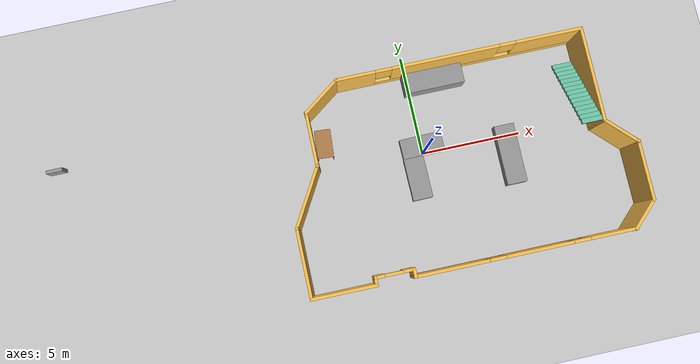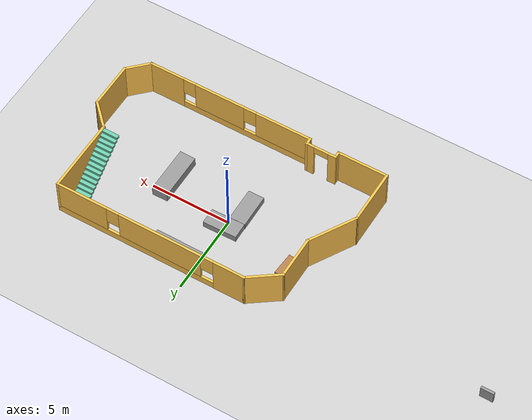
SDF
<sdf version="1.6">
 <world name="default">
  <light name="sun" type="directional">
   <pose>0 0 10 0 -0 0</pose>
   <diffuse>0.8 0.8 0.8 1</diffuse>
   <specular>0.1 0.1 0.1 1</specular>
   <attenuation>
    <range>1000</range>
    <constant>0.9</constant>
    <linear>0.01</linear>
    <quadratic>0.001</quadratic>
   </attenuation>
   <direction>-0.5 0.5 -1</direction>
  </light>
  <model name="ground_plane">
   <static>1</static>
   <link name="link">
    <collision name="collision">
     <geometry><plane><normal>0 0 1</normal><size>100 100</size></plane></geometry>
     <surface><friction><ode><mu>100</mu><mu2>50</mu2></ode></friction></surface>
    </collision>
    <visual name="visual">
     <cast_shadows>0</cast_shadows>
     <geometry><plane><normal>0 0 1</normal><size>100 100</size></plane></geometry>
     <material>
      <script><uri>file://media/materials/scripts/gazebo.material</uri><name>Gazebo/Grey</name></script>
     </material>
    </visual>
   </link>
  </model>
  <gravity>0 0 -9.8</gravity>
  <magnetic_field>6e-06 2.3e-05 -4.2e-05</magnetic_field>
  <atmosphere type="adiabatic"/>
  <physics name="default_physics" default="0" type="ode">
   <max_step_size>0.001</max_step_size>
   <real_time_factor>1</real_time_factor>
   <real_time_update_rate>1000</real_time_update_rate>
  </physics>
  <scene><ambient>0.4 0.4 0.4 1</ambient><background>0.7 0.7 0.7 1</background><shadows>1</shadows></scene>
  <spherical_coordinates>
   <surface_model>EARTH_WGS84</surface_model>
   <latitude_deg>0</latitude_deg>
   <longitude_deg>0</longitude_deg>
   <elevation>0</elevation>
   <heading_deg>0</heading_deg>
  </spherical_coordinates>
  <model name="home">
   <pose>1.52687 -0.882496 0 0 -0 0</pose>
   <link name="Stairs_2">
    <visual name="Stairs_2_Visual_0">
     <pose>6.43881 3.77668 0.083333 0 -0 0</pose>
     <geometry><box><size>1 0.233333 0.166667</size></box></geometry>
     <material>
      <script><uri>file://media/materials/scripts/gazebo.material</uri><name>Gazebo/Grey</name></script>
      <ambient>0.435294 0.796078 0.67451 1</ambient>
     </material>
    </visual>
    <collision name="Stairs_2_Collision_0">
     <geometry><box><size>1 0.233333 0.166667</size></box></geometry>
     <pose>6.43881 3.77668 0.083333 0 -0 0</pose>
    </collision>
    <visual name="Stairs_2_Visual_1">
     <pose>6.43881 3.54335 0.25 0 -0 0</pose>
     <geometry><box><size>1 0.233333 0.166667</size></box></geometry>
     <material>
      <script><uri>file://media/materials/scripts/gazebo.material</uri><name>Gazebo/Grey</name></script>
      <ambient>0.435294 0.796078 0.67451 1</ambient>
     </material>
    </visual>
    <collision name="Stairs_2_Collision_1">
     <geometry><box><size>1 0.233333 0.166667</size></box></geometry>
     <pose>6.43881 3.54335 0.25 0 -0 0</pose>
    </collision>
    <visual name="Stairs_2_Visual_2">
     <pose>6.43881 3.31002 0.416667 0 -0 0</pose>
     <geometry><box><size>1 0.233333 0.166667</size></box></geometry>
     <material>
      <script><uri>file://media/materials/scripts/gazebo.material</uri><name>Gazebo/Grey</name></script>
      <ambient>0.435294 0.796078 0.67451 1</ambient>
     </material>
    </visual>
    <collision name="Stairs_2_Collision_2">
     <geometry><box><size>1 0.233333 0.166667</size></box></geometry>
     <pose>6.43881 3.31002 0.416667 0 -0 0</pose>
    </collision>
    <visual name="Stairs_2_Visual_3">
     <pose>6.43881 3.07668 0.583333 0 -0 0</pose>
     <geometry><box><size>1 0.233333 0.166667</size></box></geometry>
     <material>
      <script><uri>file://media/materials/scripts/gazebo.material</uri><name>Gazebo/Grey</name></script>
      <ambient>0.435294 0.796078 0.67451 1</ambient>
     </material>
    </visual>
    <collision name="Stairs_2_Collision_3">
     <geometry><box><size>1 0.233333 0.166667</size></box></geometry>
     <pose>6.43881 3.07668 0.583333 0 -0 0</pose>
    </collision>
    <visual name="Stairs_2_Visual_4">
     <pose>6.43881 2.84335 0.75 0 -0 0</pose>
     <geometry><box><size>1 0.233333 0.166667</size></box></geometry>
     <material>
      <script><uri>file://media/materials/scripts/gazebo.material</uri><name>Gazebo/Grey</name></script>
      <ambient>0.435294 0.796078 0.67451 1</ambient>
     </material>
    </visual>
    <collision name="Stairs_2_Collision_4">
     <geometry><box><size>1 0.233333 0.166667</size></box></geometry>
     <pose>6.43881 2.84335 0.75 0 -0 0</pose>
    </collision>
    <visual name="Stairs_2_Visual_5">
     <pose>6.43881 2.61002 0.916667 0 -0 0</pose>
     <geometry><box><size>1 0.233333 0.166667</size></box></geometry>
     <material>
      <script><uri>file://media/materials/scripts/gazebo.material</uri><name>Gazebo/Grey</name></script>
      <ambient>0.435294 0.796078 0.67451 1</ambient>
     </material>
    </visual>
    <collision name="Stairs_2_Collision_5">
     <geometry><box><size>1 0.233333 0.166667</size></box></geometry>
     <pose>6.43881 2.61002 0.916667 0 -0 0</pose>
    </collision>
    <visual name="Stairs_2_Visual_6">
     <pose>6.43881 2.37668 1.08333 0 -0 0</pose>
     <geometry><box><size>1 0.233333 0.166667</size></box></geometry>
     <material>
      <script><uri>file://media/materials/scripts/gazebo.material</uri><name>Gazebo/Grey</name></script>
      <ambient>0.435294 0.796078 0.67451 1</ambient>
     </material>
    </visual>
    <collision name="Stairs_2_Collision_6">
     <geometry><box><size>1 0.233333 0.166667</size></box></geometry>
     <pose>6.43881 2.37668 1.08333 0 -0 0</pose>
    </collision>
    <visual name="Stairs_2_Visual_7">
     <pose>6.43881 2.14335 1.25 0 -0 0</pose>
     <geometry><box><size>1 0.233333 0.166667</size></box></geometry>
     <material>
      <script><uri>file://media/materials/scripts/gazebo.material</uri><name>Gazebo/Grey</name></script>
      <ambient>0.435294 0.796078 0.67451 1</ambient>
     </material>
    </visual>
    <collision name="Stairs_2_Collision_7">
     <geometry><box><size>1 0.233333 0.166667</size></box></geometry>
     <pose>6.43881 2.14335 1.25 0 -0 0</pose>
    </collision>
    <visual name="Stairs_2_Visual_8">
     <pose>6.43881 1.91002 1.41667 0 -0 0</pose>
     <geometry><box><size>1 0.233333 0.166667</size></box></geometry>
     <material>
      <script><uri>file://media/materials/scripts/gazebo.material</uri><name>Gazebo/Grey</name></script>
      <ambient>0.435294 0.796078 0.67451 1</ambient>
     </material>
    </visual>
    <collision name="Stairs_2_Collision_8">
     <geometry><box><size>1 0.233333 0.166667</size></box></geometry>
     <pose>6.43881 1.91002 1.41667 0 -0 0</pose>
    </collision>
    <visual name="Stairs_2_Visual_9">
     <pose>6.43881 1.67668 1.58333 0 -0 0</pose>
     <geometry><box><size>1 0.233333 0.166667</size></box></geometry>
     <material>
      <script><uri>file://media/materials/scripts/gazebo.material</uri><name>Gazebo/Grey</name></script>
      <ambient>0.435294 0.796078 0.67451 1</ambient>
     </material>
    </visual>
    <collision name="Stairs_2_Collision_9">
     <geometry><box><size>1 0.233333 0.166667</size></box></geometry>
     <pose>6.43881 1.67668 1.58333 0 -0 0</pose>
    </collision>
    <visual name="Stairs_2_Visual_10">
     <pose>6.43881 1.44335 1.75 0 -0 0</pose>
     <geometry><box><size>1 0.233333 0.166667</size></box></geometry>
     <material>
      <script><uri>file://media/materials/scripts/gazebo.material</uri><name>Gazebo/Grey</name></script>
      <ambient>0.435294 0.796078 0.67451 1</ambient>
     </material>
    </visual>
    <collision name="Stairs_2_Collision_10">
     <geometry><box><size>1 0.233333 0.166667</size></box></geometry>
     <pose>6.43881 1.44335 1.75 0 -0 0</pose>
    </collision>
    <visual name="Stairs_2_Visual_11">
     <pose>6.43881 1.21002 1.91667 0 -0 0</pose>
     <geometry><box><size>1 0.233333 0.166667</size></box></geometry>
     <material>
      <script><uri>file://media/materials/scripts/gazebo.material</uri><name>Gazebo/Grey</name></script>
      <ambient>0.435294 0.796078 0.67451 1</ambient>
     </material>
    </visual>
    <collision name="Stairs_2_Collision_11">
     <geometry><box><size>1 0.233333 0.166667</size></box></geometry>
     <pose>6.43881 1.21002 1.91667 0 -0 0</pose>
    </collision>
    <visual name="Stairs_2_Visual_12">
     <pose>6.43881 0.976684 2.08333 0 -0 0</pose>
     <geometry><box><size>1 0.233333 0.166667</size></box></geometry>
     <material>
      <script><uri>file://media/materials/scripts/gazebo.material</uri><name>Gazebo/Grey</name></script>
      <ambient>0.435294 0.796078 0.67451 1</ambient>
     </material>
    </visual>
    <collision name="Stairs_2_Collision_12">
     <geometry><box><size>1 0.233333 0.166667</size></box></geometry>
     <pose>6.43881 0.976684 2.08333 0 -0 0</pose>
    </collision>
    <visual name="Stairs_2_Visual_13">
     <pose>6.43881 0.74335 2.25 0 -0 0</pose>
     <geometry><box><size>1 0.233333 0.166667</size></box></geometry>
     <material>
      <script><uri>file://media/materials/scripts/gazebo.material</uri><name>Gazebo/Grey</name></script>
      <ambient>0.435294 0.796078 0.67451 1</ambient>
     </material>
    </visual>
    <collision name="Stairs_2_Collision_13">
     <geometry><box><size>1 0.233333 0.166667</size></box></geometry>
     <pose>6.43881 0.74335 2.25 0 -0 0</pose>
    </collision>
    <visual name="Stairs_2_Visual_14">
     <pose>6.43881 0.510017 2.41667 0 -0 0</pose>
     <geometry><box><size>1 0.233333 0.166667</size></box></geometry>
     <material>
      <script><uri>file://media/materials/scripts/gazebo.material</uri><name>Gazebo/Grey</name></script>
      <ambient>0.435294 0.796078 0.67451 1</ambient>
     </material>
    </visual>
    <collision name="Stairs_2_Collision_14">
     <geometry><box><size>1 0.233333 0.166667</size></box></geometry>
     <pose>6.43881 0.510017 2.41667 0 -0 0</pose>
    </collision>
   </link>
   <link name="Wall_25">
    <pose>0.980731 4.9454 0 0 -0 0</pose>
    <visual name="Wall_25_Visual_0">
     <pose>-5.11339 0 1.25 0 -0 0</pose>
     <geometry><box><size>2.02322 0.15 2.5</size></box></geometry>
     <material>
      <script><uri>file://media/materials/scripts/gazebo.material</uri><name>Gazebo/Grey</name></script>
      <ambient>1 0.764706 0.305882 1</ambient>
     </material>
    </visual>
    <collision name="Wall_25_Collision_0">
     <geometry><box><size>2.02322 0.15 2.5</size></box></geometry>
     <pose>-5.11339 0 1.25 0 -0 0</pose>
    </collision>
    <visual name="Wall_25_Visual_1">
     <pose>1.01161 0 0.25 0 -0 0</pose>
     <geometry><box><size>10.2268 0.15 0.5</size></box></geometry>
     <material>
      <script><uri>file://media/materials/scripts/gazebo.material</uri><name>Gazebo/Grey</name></script>
      <ambient>1 0.764706 0.305882 1</ambient>
     </material>
    </visual>
    <collision name="Wall_25_Collision_1">
     <geometry><box><size>10.2268 0.15 0.5</size></box></geometry>
     <pose>1.01161 0 0.25 0 -0 0</pose>
    </collision>
    <visual name="Wall_25_Visual_2">
     <pose>-0.647382 0 1.5 0 -0 0</pose>
     <geometry><box><size>5.30879 0.15 2</size></box></geometry>
     <material>
      <script><uri>file://media/materials/scripts/gazebo.material</uri><name>Gazebo/Grey</name></script>
      <ambient>1 0.764706 0.305882 1</ambient>
     </material>
    </visual>
    <collision name="Wall_25_Collision_2">
     <geometry><box><size>5.30879 0.15 2</size></box></geometry>
     <pose>-0.647382 0 1.5 0 -0 0</pose>
    </collision>
    <visual name="Wall_25_Visual_3">
     <pose>4.46601 0 1.5 0 -0 0</pose>
     <geometry><box><size>3.31799 0.15 2</size></box></geometry>
     <material>
      <script><uri>file://media/materials/scripts/gazebo.material</uri><name>Gazebo/Grey</name></script>
      <ambient>1 0.764706 0.305882 1</ambient>
     </material>
    </visual>
    <collision name="Wall_25_Collision_3">
     <geometry><box><size>3.31799 0.15 2</size></box></geometry>
     <pose>4.46601 0 1.5 0 -0 0</pose>
    </collision>
    <visual name="Wall_25_Visual_4">
     <pose>-3.70178 0 1.9 0 -0 0</pose>
     <geometry><box><size>0.8 0.15 1.2</size></box></geometry>
     <material>
      <script><uri>file://media/materials/scripts/gazebo.material</uri><name>Gazebo/Grey</name></script>
      <ambient>1 0.764706 0.305882 1</ambient>
     </material>
    </visual>
    <collision name="Wall_25_Collision_4">
     <geometry><box><size>0.8 0.15 1.2</size></box></geometry>
     <pose>-3.70178 0 1.9 0 -0 0</pose>
    </collision>
    <visual name="Wall_25_Visual_5">
     <pose>2.40701 0 1.9 0 -0 0</pose>
     <geometry><box><size>0.8 0.15 1.2</size></box></geometry>
     <material>
      <script><uri>file://media/materials/scripts/gazebo.material</uri><name>Gazebo/Grey</name></script>
      <ambient>1 0.764706 0.305882 1</ambient>
     </material>
    </visual>
    <collision name="Wall_25_Collision_5">
     <geometry><box><size>0.8 0.15 1.2</size></box></geometry>
     <pose>2.40701 0 1.9 0 -0 0</pose>
    </collision>
   </link>
   <link name="Wall_34">
    <collision name="Wall_34_Collision">
     <geometry><box><size>4.75 0.15 2.5</size></box></geometry>
     <pose>0 0 1.25 0 -0 0</pose>
    </collision>
    <visual name="Wall_34_Visual">
     <pose>0 0 1.25 0 -0 0</pose>
     <geometry><box><size>4.75 0.15 2.5</size></box></geometry>
     <material>
      <script><uri>file://media/materials/scripts/gazebo.material</uri><name>Gazebo/Grey</name></script>
      <ambient>1 0.764706 0.305882 1</ambient>
     </material>
    </visual>
    <pose>7.03073 2.6454 0 0 0 -1.5708</pose>
   </link>
   <link name="Wall_35">
    <collision name="Wall_35_Collision">
     <geometry><box><size>2 0.15 2.5</size></box></geometry>
     <pose>0 0 1.25 0 -0 0</pose>
    </collision>
    <visual name="Wall_35_Visual">
     <pose>0 0 1.25 0 -0 0</pose>
     <geometry><box><size>2 0.15 2.5</size></box></geometry>
     <material>
      <script><uri>file://media/materials/scripts/gazebo.material</uri><name>Gazebo/Grey</name></script>
      <ambient>1 0.764706 0.305882 1</ambient>
     </material>
    </visual>
    <pose>7.6848 -0.308671 0 0 0 -0.785398</pose>
   </link>
   <link name="Wall_36">
    <collision name="Wall_36_Collision">
     <geometry><box><size>3 0.15 2.5</size></box></geometry>
     <pose>0 0 1.25 0 -0 0</pose>
    </collision>
    <visual name="Wall_36_Visual">
     <pose>0 0 1.25 0 -0 0</pose>
     <geometry><box><size>3 0.15 2.5</size></box></geometry>
     <material>
      <script><uri>file://media/materials/scripts/gazebo.material</uri><name>Gazebo/Grey</name></script>
      <ambient>1 0.764706 0.305882 1</ambient>
     </material>
    </visual>
    <pose>8.33888 -2.38774 0 0 0 -1.5708</pose>
   </link>
   <link name="Wall_37">
    <collision name="Wall_37_Collision">
     <geometry><box><size>1.75 0.15 2.5</size></box></geometry>
     <pose>0 0 1.25 0 -0 0</pose>
    </collision>
    <visual name="Wall_37_Visual">
     <pose>0 0 1.25 0 -0 0</pose>
     <geometry><box><size>1.75 0.15 2.5</size></box></geometry>
     <material>
      <script><uri>file://media/materials/scripts/gazebo.material</uri><name>Gazebo/Grey</name></script>
      <ambient>1 0.764706 0.305882 1</ambient>
     </material>
    </visual>
    <pose>7.77319 -4.37843 0 0 0 -2.35619</pose>
   </link>
   <link name="Wall_38">
    <pose>1.90751 -4.94412 0 0 -0 3.14159</pose>
    <visual name="Wall_38_Visual_0">
     <pose>-4.23445 0 1.25 0 -0 0</pose>
     <geometry><box><size>2.2811 0.15 2.5</size></box></geometry>
     <material>
      <script><uri>file://media/materials/scripts/gazebo.material</uri><name>Gazebo/Grey</name></script>
      <ambient>1 0.764706 0.305882 1</ambient>
     </material>
    </visual>
    <collision name="Wall_38_Collision_0">
     <geometry><box><size>2.2811 0.15 2.5</size></box></geometry>
     <pose>-4.23445 0 1.25 0 -0 0</pose>
    </collision>
    <visual name="Wall_38_Visual_1">
     <pose>1.14055 0 0.25 0 -0 0</pose>
     <geometry><box><size>8.4689 0.15 0.5</size></box></geometry>
     <material>
      <script><uri>file://media/materials/scripts/gazebo.material</uri><name>Gazebo/Grey</name></script>
      <ambient>1 0.764706 0.305882 1</ambient>
     </material>
    </visual>
    <collision name="Wall_38_Collision_1">
     <geometry><box><size>8.4689 0.15 0.5</size></box></geometry>
     <pose>1.14055 0 0.25 0 -0 0</pose>
    </collision>
    <visual name="Wall_38_Visual_2">
     <pose>-0.671126 0 1.5 0 -0 0</pose>
     <geometry><box><size>3.24556 0.15 2</size></box></geometry>
     <material>
      <script><uri>file://media/materials/scripts/gazebo.material</uri><name>Gazebo/Grey</name></script>
      <ambient>1 0.764706 0.305882 1</ambient>
     </material>
    </visual>
    <collision name="Wall_38_Collision_2">
     <geometry><box><size>3.24556 0.15 2</size></box></geometry>
     <pose>-0.671126 0 1.5 0 -0 0</pose>
    </collision>
    <visual name="Wall_38_Visual_3">
     <pose>3.56333 0 1.5 0 -0 0</pose>
     <geometry><box><size>3.62335 0.15 2</size></box></geometry>
     <material>
      <script><uri>file://media/materials/scripts/gazebo.material</uri><name>Gazebo/Grey</name></script>
      <ambient>1 0.764706 0.305882 1</ambient>
     </material>
    </visual>
    <collision name="Wall_38_Collision_3">
     <geometry><box><size>3.62335 0.15 2</size></box></geometry>
     <pose>3.56333 0 1.5 0 -0 0</pose>
    </collision>
    <visual name="Wall_38_Visual_4">
     <pose>-2.6939 0 1.9 0 -0 0</pose>
     <geometry><box><size>0.8 0.15 1.2</size></box></geometry>
     <material>
      <script><uri>file://media/materials/scripts/gazebo.material</uri><name>Gazebo/Grey</name></script>
      <ambient>1 0.764706 0.305882 1</ambient>
     </material>
    </visual>
    <collision name="Wall_38_Collision_4">
     <geometry><box><size>0.8 0.15 1.2</size></box></geometry>
     <pose>-2.6939 0 1.9 0 -0 0</pose>
    </collision>
    <visual name="Wall_38_Visual_5">
     <pose>1.35165 0 1.9 0 -0 0</pose>
     <geometry><box><size>0.8 0.15 1.2</size></box></geometry>
     <material>
      <script><uri>file://media/materials/scripts/gazebo.material</uri><name>Gazebo/Grey</name></script>
      <ambient>1 0.764706 0.305882 1</ambient>
     </material>
    </visual>
    <collision name="Wall_38_Collision_5">
     <geometry><box><size>0.8 0.15 1.2</size></box></geometry>
     <pose>1.35165 0 1.9 0 -0 0</pose>
    </collision>
   </link>
   <link name="Wall_39">
    <collision name="Wall_39_Collision">
     <geometry><box><size>0.5 0.15 2.5</size></box></geometry>
     <pose>0 0 1.25 0 -0 0</pose>
    </collision>
    <visual name="Wall_39_Visual">
     <pose>0 0 1.25 0 -0 0</pose>
     <geometry><box><size>0.5 0.15 2.5</size></box></geometry>
     <material>
      <script><uri>file://media/materials/scripts/gazebo.material</uri><name>Gazebo/Grey</name></script>
      <ambient>1 0.764706 0.305882 1</ambient>
     </material>
    </visual>
    <pose>-3.39249 -4.76912 0 0 -0 1.5708</pose>
   </link>
   <link name="Wall_40">
    <pose>-4.31749 -4.59412 0 0 -0 3.14159</pose>
    <visual name="Wall_40_Visual_0">
     <pose>-0.714111 0 1.25 0 -0 0</pose>
     <geometry><box><size>0.571777 0.15 2.5</size></box></geometry>
     <material>
      <script><uri>file://media/materials/scripts/gazebo.material</uri><name>Gazebo/Grey</name></script>
      <ambient>1 0.764706 0.305882 1</ambient>
     </material>
    </visual>
    <collision name="Wall_40_Collision_0">
     <geometry><box><size>0.571777 0.15 2.5</size></box></geometry>
     <pose>-0.714111 0 1.25 0 -0 0</pose>
    </collision>
    <visual name="Wall_40_Visual_1">
     <pose>0.735889 0 1.25 0 -0 0</pose>
     <geometry><box><size>0.528223 0.15 2.5</size></box></geometry>
     <material>
      <script><uri>file://media/materials/scripts/gazebo.material</uri><name>Gazebo/Grey</name></script>
      <ambient>1 0.764706 0.305882 1</ambient>
     </material>
    </visual>
    <collision name="Wall_40_Collision_1">
     <geometry><box><size>0.528223 0.15 2.5</size></box></geometry>
     <pose>0.735889 0 1.25 0 -0 0</pose>
    </collision>
    <visual name="Wall_40_Visual_2">
     <pose>0.021777 0 2.25 0 -0 0</pose>
     <geometry><box><size>0.9 0.15 0.5</size></box></geometry>
     <material>
      <script><uri>file://media/materials/scripts/gazebo.material</uri><name>Gazebo/Grey</name></script>
      <ambient>1 0.764706 0.305882 1</ambient>
     </material>
    </visual>
    <collision name="Wall_40_Collision_2">
     <geometry><box><size>0.9 0.15 0.5</size></box></geometry>
     <pose>0.021777 0 2.25 0 -0 0</pose>
    </collision>
   </link>
   <link name="Wall_41">
    <collision name="Wall_41_Collision">
     <geometry><box><size>0.5 0.15 2.5</size></box></geometry>
     <pose>0 0 1.25 0 -0 0</pose>
    </collision>
    <visual name="Wall_41_Visual">
     <pose>0 0 1.25 0 -0 0</pose>
     <geometry><box><size>0.5 0.15 2.5</size></box></geometry>
     <material>
      <script><uri>file://media/materials/scripts/gazebo.material</uri><name>Gazebo/Grey</name></script>
      <ambient>1 0.764706 0.305882 1</ambient>
     </material>
    </visual>
    <pose>-5.24249 -4.76912 0 0 0 -1.5708</pose>
   </link>
   <link name="Wall_42">
    <collision name="Wall_42_Collision">
     <geometry><box><size>3.25 0.15 2.5</size></box></geometry>
     <pose>0 0 1.25 0 -0 0</pose>
    </collision>
    <visual name="Wall_42_Visual">
     <pose>0 0 1.25 0 -0 0</pose>
     <geometry><box><size>3.25 0.15 2.5</size></box></geometry>
     <material>
      <script><uri>file://media/materials/scripts/gazebo.material</uri><name>Gazebo/Grey</name></script>
      <ambient>1 0.764706 0.305882 1</ambient>
     </material>
    </visual>
    <pose>-6.79249 -4.94412 0 0 -0 3.14159</pose>
   </link>
   <link name="Wall_43">
    <collision name="Wall_43_Collision">
     <geometry><box><size>3.5 0.15 2.5</size></box></geometry>
     <pose>0 0 1.25 0 -0 0</pose>
    </collision>
    <visual name="Wall_43_Visual">
     <pose>0 0 1.25 0 -0 0</pose>
     <geometry><box><size>3.5 0.15 2.5</size></box></geometry>
     <material>
      <script><uri>file://media/materials/scripts/gazebo.material</uri><name>Gazebo/Grey</name></script>
      <ambient>1 0.764706 0.305882 1</ambient>
     </material>
    </visual>
    <pose>-8.34249 -3.26912 0 0 -0 1.5708</pose>
   </link>
   <link name="Wall_44">
    <collision name="Wall_44_Collision">
     <geometry><box><size>3.25 0.15 2.5</size></box></geometry>
     <pose>0 0 1.25 0 -0 0</pose>
    </collision>
    <visual name="Wall_44_Visual">
     <pose>0 0 1.25 0 -0 0</pose>
     <geometry><box><size>3.25 0.15 2.5</size></box></geometry>
     <material>
      <script><uri>file://media/materials/scripts/gazebo.material</uri><name>Gazebo/Grey</name></script>
      <ambient>1 0.764706 0.305882 1</ambient>
     </material>
    </visual>
    <pose>-7.56749 -0.251776 0 0 -0 1.0472</pose>
   </link>
   <link name="Wall_45">
    <collision name="Wall_45_Collision">
     <geometry><box><size>2.75 0.15 2.5</size></box></geometry>
     <pose>0 0 1.25 0 -0 0</pose>
    </collision>
    <visual name="Wall_45_Visual">
     <pose>0 0 1.25 0 -0 0</pose>
     <geometry><box><size>2.75 0.15 2.5</size></box></geometry>
     <material>
      <script><uri>file://media/materials/scripts/gazebo.material</uri><name>Gazebo/Grey</name></script>
      <ambient>1 0.764706 0.305882 1</ambient>
     </material>
    </visual>
    <pose>-6.79249 2.39056 0 0 -0 1.5708</pose>
   </link>
   <link name="Wall_46">
    <collision name="Wall_46_Collision">
     <geometry><box><size>2.28169 0.15 2.5</size></box></geometry>
     <pose>0 0 1.25 0 -0 0</pose>
    </collision>
    <visual name="Wall_46_Visual">
     <pose>0 0 1.25 0 -0 0</pose>
     <geometry><box><size>2.28169 0.15 2.5</size></box></geometry>
     <material>
      <script><uri>file://media/materials/scripts/gazebo.material</uri><name>Gazebo/Grey</name></script>
      <ambient>1 0.764706 0.305882 1</ambient>
     </material>
    </visual>
    <pose>-5.93088 4.31798 0 0 -0 0.629398</pose>
   </link>
   <link name="Window_5">
    <collision name="Window_5_Collision">
     <geometry><box><size>0.8 0.17 0.8</size></box></geometry>
     <pose>0 0 0.4 0 -0 0</pose>
    </collision>
    <visual name="Window_5_Visual">
     <pose>0 0 0.4 0 -0 0</pose>
     <geometry><box><size>0.8 0.17 0.8</size></box></geometry>
     <material>
      <script><uri>file://media/materials/scripts/gazebo.material</uri><name>Gazebo/Grey</name></script>
     </material>
    </visual>
    <pose>-19.3824 3.7264 0.5 0 -0 0</pose>
   </link>
   <static>1</static>
  </model>
  <model name="table">
   <static>0</static>
   <link name="link">
    <collision name="surface">
     <pose>0 0 1 0 -0 0</pose>
     <geometry><box><size>1.5 0.8 0.03</size></box></geometry>
     <surface><friction><ode><mu>0.6</mu><mu2>0.6</mu2></ode></friction></surface>
    </collision>
    <visual name="visual1">
     <pose>0 0 1 0 -0 0</pose>
     <geometry><box><size>1.4 0.8 0.04</size></box></geometry>
     <material>
      <script><uri>file://media/materials/scripts/gazebo.material</uri><name>Gazebo/Wood</name></script>
     </material>
    </visual>
    <collision name="front_left_leg">
     <pose>0.68 0.38 0.5 0 -0 0</pose>
     <geometry><cylinder><radius>0.02</radius><length>1</length></cylinder></geometry>
    </collision>
    <visual name="front_left_leg">
     <pose>0.68 0.38 0.5 0 -0 0</pose>
     <geometry><cylinder><radius>0.02</radius><length>1</length></cylinder></geometry>
     <material>
      <script><uri>file://media/materials/scripts/gazebo.material</uri><name>Gazebo/Grey</name></script>
     </material>
    </visual>
    <collision name="front_right_leg">
     <pose>0.68 -0.38 0.5 0 -0 0</pose>
     <geometry><cylinder><radius>0.02</radius><length>1</length></cylinder></geometry>
    </collision>
    <visual name="front_right_leg">
     <pose>0.68 -0.38 0.5 0 -0 0</pose>
     <geometry><cylinder><radius>0.02</radius><length>1</length></cylinder></geometry>
     <material>
      <script><uri>file://media/materials/scripts/gazebo.material</uri><name>Gazebo/Grey</name></script>
     </material>
    </visual>
    <collision name="back_right_leg">
     <pose>-0.68 -0.38 0.5 0 -0 0</pose>
     <geometry><cylinder><radius>0.02</radius><length>1</length></cylinder></geometry>
    </collision>
    <visual name="back_right_leg">
     <pose>-0.68 -0.38 0.5 0 -0 0</pose>
     <geometry><cylinder><radius>0.02</radius><length>1</length></cylinder></geometry>
     <material>
      <script><uri>file://media/materials/scripts/gazebo.material</uri><name>Gazebo/Grey</name></script>
     </material>
    </visual>
    <collision name="back_left_leg">
     <pose>-0.68 0.38 0.5 0 -0 0</pose>
     <geometry><cylinder><radius>0.02</radius><length>1</length></cylinder></geometry>
    </collision>
    <visual name="back_left_leg">
     <pose>-0.68 0.38 0.5 0 -0 0</pose>
     <geometry><cylinder><radius>0.02</radius><length>1</length></cylinder></geometry>
     <material>
      <script><uri>file://media/materials/scripts/gazebo.material</uri><name>Gazebo/Grey</name></script>
     </material>
    </visual>
    <inertial>
     <inertia><ixx>1</ixx><ixy>0</ixy><ixz>0</ixz><iyy>1</iyy><iyz>0</iyz><izz>1</izz></inertia>
     <mass>1</mass>
    </inertial>
   </link>
   <pose>-4.737 1.39636 -6e-06 0 0 -1.64374</pose>
  </model>
  <model name="unit_box_0">
   <pose>1.25639 3.48788 0.499823 -0 0.000118 -3e-06</pose>
   <link name="link">
    <inertial>
     <mass>1</mass>
     <inertia>
      <ixx>0.166667</ixx>
      <ixy>0</ixy>
      <ixz>0</ixz>
      <iyy>0.166667</iyy>
      <iyz>0</iyz>
      <izz>0.166667</izz>
     </inertia>
    </inertial>
    <collision name="collision"><geometry><box><size>3.00536 1 1</size></box></geometry></collision>
    <visual name="visual">
     <geometry><box><size>3.00536 1 1</size></box></geometry>
     <material>
      <script><name>Gazebo/Grey</name><uri>file://media/materials/scripts/gazebo.material</uri></script>
     </material>
    </visual>
   </link>
  </model>
  <model name="unit_box_1">
   <pose>4.22218 -0.987494 0.311623 0 9e-06 0</pose>
   <link name="link">
    <inertial>
     <mass>1</mass>
     <inertia>
      <ixx>0.166667</ixx>
      <ixy>0</ixy>
      <ixz>0</ixz>
      <iyy>0.166667</iyy>
      <iyz>0</iyz>
      <izz>0.166667</izz>
     </inertia>
    </inertial>
    <collision name="collision"><geometry><box><size>1 2.97794 0.623255</size></box></geometry></collision>
    <visual name="visual">
     <geometry><box><size>1 2.97794 0.623255</size></box></geometry>
     <material>
      <script><name>Gazebo/Grey</name><uri>file://media/materials/scripts/gazebo.material</uri></script>
     </material>
    </visual>
   </link>
  </model>
  <model name="unit_box_2">
   <pose>-0.506289 -1.1896 0.212401 0 -1e-05 0.016254</pose>
   <link name="link">
    <inertial>
     <mass>1</mass>
     <inertia>
      <ixx>0.166667</ixx>
      <ixy>0</ixy>
      <ixz>0</ixz>
      <iyy>0.166667</iyy>
      <iyz>0</iyz>
      <izz>0.166667</izz>
     </inertia>
    </inertial>
    <collision name="collision"><geometry><box><size>1 2.11566 0.424811</size></box></geometry></collision>
    <visual name="visual">
     <geometry><box><size>1 2.11566 0.424811</size></box></geometry>
     <material>
      <script><name>Gazebo/Grey</name><uri>file://media/materials/scripts/gazebo.material</uri></script>
     </material>
    </visual>
   </link>
  </model>
  <model name="unit_box_2_clone">
   <pose>0.042545 0.384984 0.212401 -0 -1e-05 1.59415</pose>
   <link name="link">
    <inertial>
     <mass>1</mass>
     <inertia>
      <ixx>0.166667</ixx>
      <ixy>0</ixy>
      <ixz>0</ixz>
      <iyy>0.166667</iyy>
      <iyz>0</iyz>
      <izz>0.166667</izz>
     </inertia>
    </inertial>
    <collision name="collision"><geometry><box><size>1 2.11566 0.424811</size></box></geometry></collision>
    <visual name="visual">
     <geometry><box><size>1 2.11566 0.424811</size></box></geometry>
     <material>
      <script><name>Gazebo/Grey</name><uri>file://media/materials/scripts/gazebo.material</uri></script>
     </material>
    </visual>
   </link>
  </model>
 </world>
</sdf>
